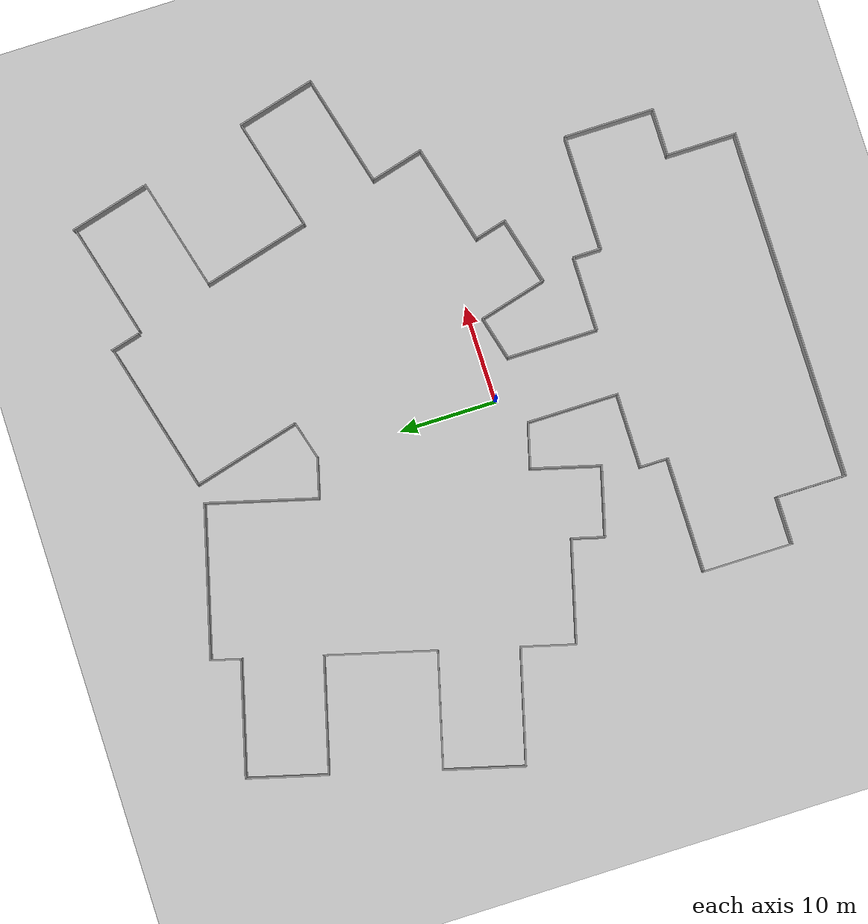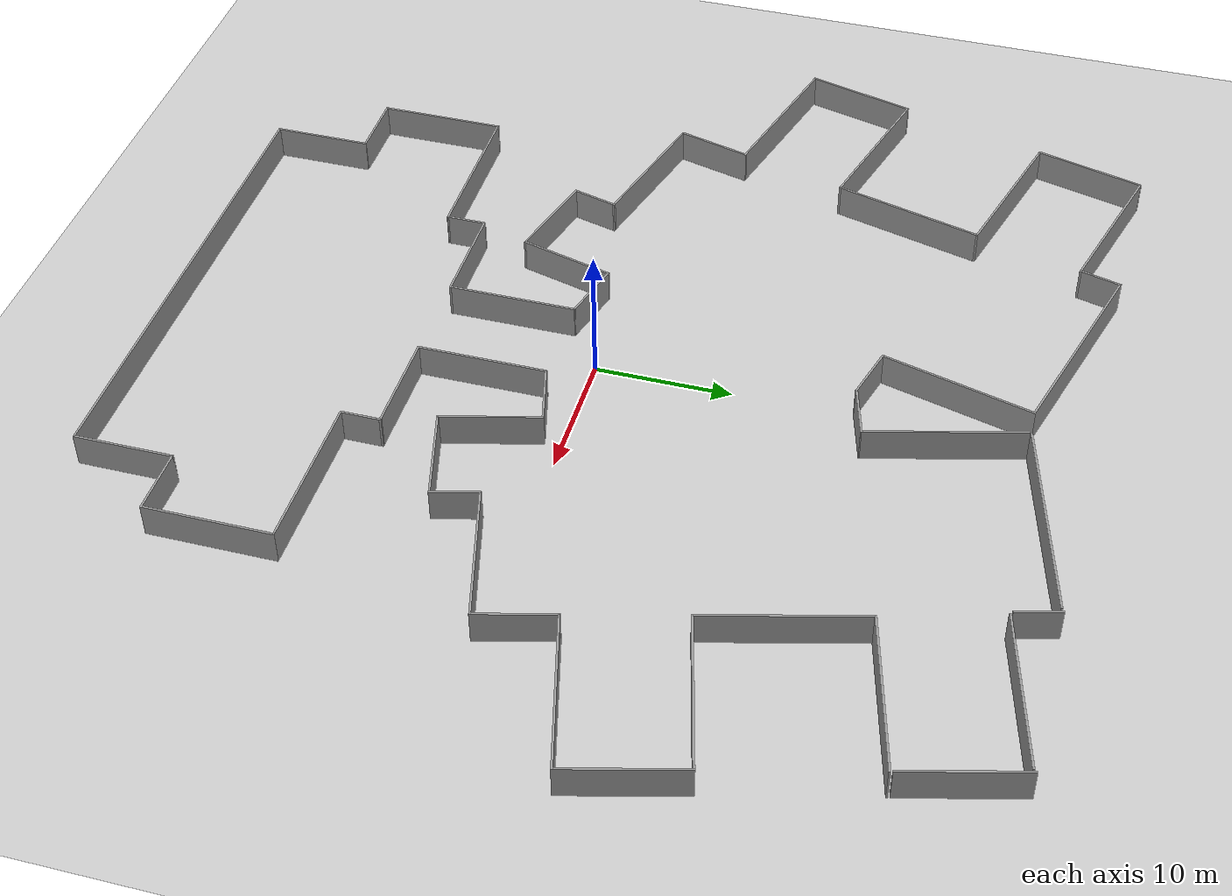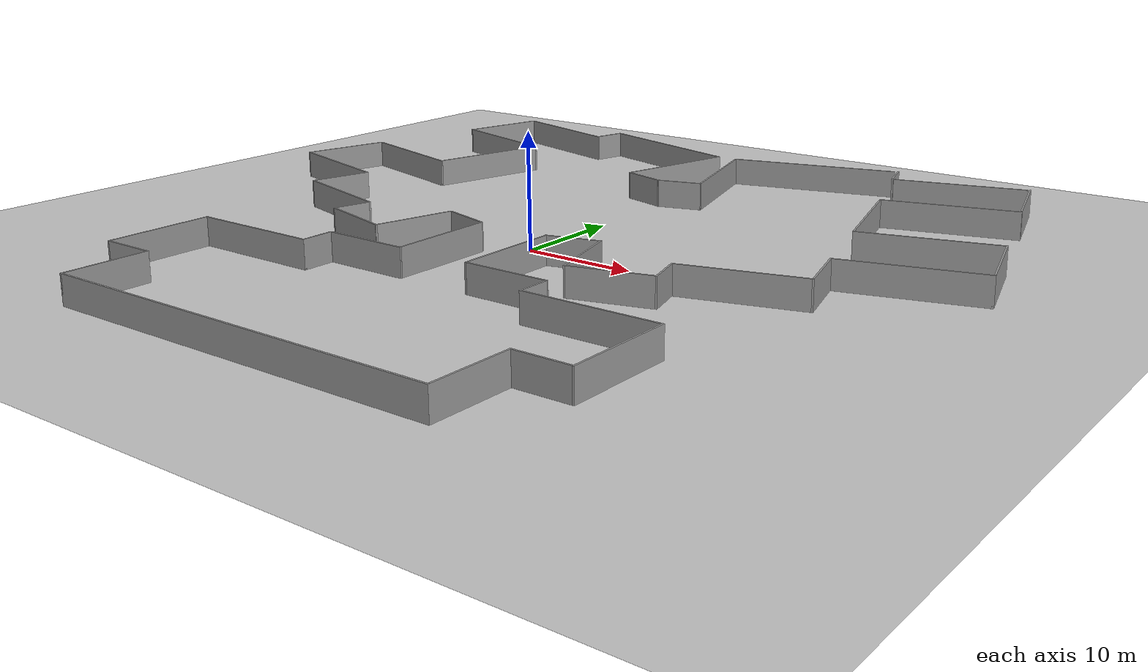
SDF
<sdf version="1.6">
 <world name="default">
  <light name="sun" type="directional">
   <pose>0 0 10 0 -0 0</pose>
   <diffuse>0.8 0.8 0.8 1</diffuse>
   <specular>0.1 0.1 0.1 1</specular>
   <attenuation>
    <range>1000</range>
    <constant>0.9</constant>
    <linear>0.01</linear>
    <quadratic>0.001</quadratic>
   </attenuation>
   <direction>-0.5 0.5 -1</direction>
  </light>
  <model name="ground_plane">
   <static>1</static>
   <link name="link">
    <collision name="collision">
     <geometry><plane><normal>0 0 1</normal><size>100 100</size></plane></geometry>
     <surface><friction><ode><mu>100</mu><mu2>50</mu2></ode></friction></surface>
    </collision>
    <visual name="visual">
     <cast_shadows>0</cast_shadows>
     <geometry><plane><normal>0 0 1</normal><size>100 100</size></plane></geometry>
     <material>
      <script><uri>file://media/materials/scripts/gazebo.material</uri><name>Gazebo/Grey</name></script>
     </material>
    </visual>
   </link>
  </model>
  <gravity>0 0 -9.8</gravity>
  <magnetic_field>6e-06 2.3e-05 -4.2e-05</magnetic_field>
  <atmosphere type="adiabatic"/>
  <physics name="default_physics" default="0" type="ode">
   <max_step_size>0.001</max_step_size>
   <real_time_factor>1</real_time_factor>
   <real_time_update_rate>1000</real_time_update_rate>
  </physics>
  <scene><ambient>0.4 0.4 0.4 1</ambient><background>0.7 0.7 0.7 1</background><shadows>1</shadows></scene>
  <spherical_coordinates>
   <surface_model>EARTH_WGS84</surface_model>
   <latitude_deg>0</latitude_deg>
   <longitude_deg>0</longitude_deg>
   <elevation>0</elevation>
   <heading_deg>0</heading_deg>
  </spherical_coordinates>
  <model name="right_map_down">
   <pose>0.308675 2.07821 0 0 -0 0</pose>
   <link name="Wall_0">
    <collision name="Wall_0_Collision">
     <geometry><box><size>36.2 0.15 2.5</size></box></geometry>
     <pose>0 0 1.25 0 -0 0</pose>
    </collision>
    <visual name="Wall_0_Visual">
     <pose>0 0 1.25 0 -0 0</pose>
     <geometry><box><size>36.2 0.15 2.5</size></box></geometry>
     <material>
      <script><uri>file://media/materials/scripts/gazebo.material</uri><name>Gazebo/Grey</name></script>
      <ambient>1 1 1 1</ambient>
     </material>
    </visual>
    <pose>0.020689 -33.1531 0 0 -0 0</pose>
   </link>
   <link name="Wall_100">
    <collision name="Wall_100_Collision">
     <geometry><box><size>3.2 0.15 2.5</size></box></geometry>
     <pose>0 0 1.25 0 -0 0</pose>
    </collision>
    <visual name="Wall_100_Visual">
     <pose>0 0 1.25 0 -0 0</pose>
     <geometry><box><size>3.2 0.15 2.5</size></box></geometry>
     <material>
      <script><uri>file://media/materials/scripts/gazebo.material</uri><name>Gazebo/Grey</name></script>
      <ambient>1 1 1 1</ambient>
     </material>
    </visual>
    <pose>-16.9283 31.3178 0 0 -0 1.309</pose>
   </link>
   <link name="Wall_102">
    <collision name="Wall_102_Collision">
     <geometry><box><size>3.2 0.15 2.5</size></box></geometry>
     <pose>0 0 1.25 0 -0 0</pose>
    </collision>
    <visual name="Wall_102_Visual">
     <pose>0 0 1.25 0 -0 0</pose>
     <geometry><box><size>3.2 0.15 2.5</size></box></geometry>
     <material>
      <script><uri>file://media/materials/scripts/gazebo.material</uri><name>Gazebo/Grey</name></script>
      <ambient>1 1 1 1</ambient>
     </material>
    </visual>
    <pose>16.3757 31.5284 0 0 -0 1.8326</pose>
   </link>
   <link name="Wall_104">
    <collision name="Wall_104_Collision">
     <geometry><box><size>15.8 0.15 2.5</size></box></geometry>
     <pose>0 0 1.25 0 -0 0</pose>
    </collision>
    <visual name="Wall_104_Visual">
     <pose>0 0 1.25 0 -0 0</pose>
     <geometry><box><size>15.8 0.15 2.5</size></box></geometry>
     <material>
      <script><uri>file://media/materials/scripts/gazebo.material</uri><name>Gazebo/Grey</name></script>
      <ambient>1 1 1 1</ambient>
     </material>
    </visual>
    <pose>-8.97526 30.7656 0 0 0 -0.261799</pose>
   </link>
   <link name="Wall_106">
    <collision name="Wall_106_Collision">
     <geometry><box><size>15.8 0.15 2.5</size></box></geometry>
     <pose>0 0 1.25 0 -0 0</pose>
    </collision>
    <visual name="Wall_106_Visual">
     <pose>0 0 1.25 0 -0 0</pose>
     <geometry><box><size>15.8 0.15 2.5</size></box></geometry>
     <material>
      <script><uri>file://media/materials/scripts/gazebo.material</uri><name>Gazebo/Grey</name></script>
      <ambient>1 1 1 1</ambient>
     </material>
    </visual>
    <pose>8.09291 30.8207 0 0 0 -2.87979</pose>
   </link>
   <link name="Wall_11">
    <collision name="Wall_11_Collision">
     <geometry><box><size>9.4 0.15 2.5</size></box></geometry>
     <pose>0 0 1.25 0 -0 0</pose>
    </collision>
    <visual name="Wall_11_Visual">
     <pose>0 0 1.25 0 -0 0</pose>
     <geometry><box><size>9.4 0.15 2.5</size></box></geometry>
     <material>
      <script><uri>file://media/materials/scripts/gazebo.material</uri><name>Gazebo/Grey</name></script>
      <ambient>1 1 1 1</ambient>
     </material>
    </visual>
    <pose>-22.8951 -21.3564 0 0 -0 1.5708</pose>
   </link>
   <link name="Wall_127">
    <collision name="Wall_127_Collision">
     <geometry><box><size>11.6 0.15 2.5</size></box></geometry>
     <pose>0 0 1.25 0 -0 0</pose>
    </collision>
    <visual name="Wall_127_Visual">
     <pose>0 0 1.25 0 -0 0</pose>
     <geometry><box><size>11.6 0.15 2.5</size></box></geometry>
     <material>
      <script><uri>file://media/materials/scripts/gazebo.material</uri><name>Gazebo/Grey</name></script>
      <ambient>1 1 1 1</ambient>
     </material>
    </visual>
    <pose>-2.89863 23.2104 0 0 0 -1.8326</pose>
   </link>
   <link name="Wall_13">
    <collision name="Wall_13_Collision">
     <geometry><box><size>9.4 0.15 2.5</size></box></geometry>
     <pose>0 0 1.25 0 -0 0</pose>
    </collision>
    <visual name="Wall_13_Visual">
     <pose>0 0 1.25 0 -0 0</pose>
     <geometry><box><size>9.4 0.15 2.5</size></box></geometry>
     <material>
      <script><uri>file://media/materials/scripts/gazebo.material</uri><name>Gazebo/Grey</name></script>
      <ambient>1 1 1 1</ambient>
     </material>
    </visual>
    <pose>22.8957 -21.3781 0 0 -0 1.5708</pose>
   </link>
   <link name="Wall_131">
    <collision name="Wall_131_Collision">
     <geometry><box><size>11.6 0.15 2.5</size></box></geometry>
     <pose>0 0 1.25 0 -0 0</pose>
    </collision>
    <visual name="Wall_131_Visual">
     <pose>0 0 1.25 0 -0 0</pose>
     <geometry><box><size>11.6 0.15 2.5</size></box></geometry>
     <material>
      <script><uri>file://media/materials/scripts/gazebo.material</uri><name>Gazebo/Grey</name></script>
      <ambient>1 1 1 1</ambient>
     </material>
    </visual>
    <pose>2.01628 23.2655 0 0 0 -1.309</pose>
   </link>
   <link name="Wall_134">
    <collision name="Wall_134_Collision">
     <geometry><box><size>4.25 0.15 2.5</size></box></geometry>
     <pose>0 0 1.25 0 -0 0</pose>
    </collision>
    <visual name="Wall_134_Visual">
     <pose>0 0 1.25 0 -0 0</pose>
     <geometry><box><size>4.25 0.15 2.5</size></box></geometry>
     <material>
      <script><uri>file://media/materials/scripts/gazebo.material</uri><name>Gazebo/Grey</name></script>
      <ambient>1 1 1 1</ambient>
     </material>
    </visual>
    <pose>-2.40022 17.1499 0 0 0 -0.261799</pose>
   </link>
   <link name="Wall_141">
    <collision name="Wall_141_Collision">
     <geometry><box><size>4.22401 0.15 2.5</size></box></geometry>
     <pose>0 0 1.25 0 -0 0</pose>
    </collision>
    <visual name="Wall_141_Visual">
     <pose>0 0 1.25 0 -0 0</pose>
     <geometry><box><size>4.22401 0.15 2.5</size></box></geometry>
     <material>
      <script><uri>file://media/materials/scripts/gazebo.material</uri><name>Gazebo/Grey</name></script>
      <ambient>1 1 1 1</ambient>
     </material>
    </visual>
    <pose>1.53897 17.1774 0 0 0 -2.86404</pose>
   </link>
   <link name="Wall_15">
    <collision name="Wall_15_Collision">
     <geometry><box><size>12 0.15 2.5</size></box></geometry>
     <pose>0 0 1.25 0 -0 0</pose>
    </collision>
    <visual name="Wall_15_Visual">
     <pose>0 0 1.25 0 -0 0</pose>
     <geometry><box><size>12 0.15 2.5</size></box></geometry>
     <material>
      <script><uri>file://media/materials/scripts/gazebo.material</uri><name>Gazebo/Grey</name></script>
      <ambient>1 1 1 1</ambient>
     </material>
    </visual>
    <pose>16.9706 -16.7531 0 0 0 -3.14159</pose>
   </link>
   <link name="Wall_17">
    <collision name="Wall_17_Collision">
     <geometry><box><size>3 0.15 2.5</size></box></geometry>
     <pose>0 0 1.25 0 -0 0</pose>
    </collision>
    <visual name="Wall_17_Visual">
     <pose>0 0 1.25 0 -0 0</pose>
     <geometry><box><size>3 0.15 2.5</size></box></geometry>
     <material>
      <script><uri>file://media/materials/scripts/gazebo.material</uri><name>Gazebo/Grey</name></script>
      <ambient>1 1 1 1</ambient>
     </material>
    </visual>
    <pose>11.0455 -15.3281 0 0 -0 1.5708</pose>
   </link>
   <link name="Wall_19">
    <collision name="Wall_19_Collision">
     <geometry><box><size>12 0.15 2.5</size></box></geometry>
     <pose>0 0 1.25 0 -0 0</pose>
    </collision>
    <visual name="Wall_19_Visual">
     <pose>0 0 1.25 0 -0 0</pose>
     <geometry><box><size>12 0.15 2.5</size></box></geometry>
     <material>
      <script><uri>file://media/materials/scripts/gazebo.material</uri><name>Gazebo/Grey</name></script>
      <ambient>1 1 1 1</ambient>
     </material>
    </visual>
    <pose>-16.9701 -16.7314 0 0 -0 0</pose>
   </link>
   <link name="Wall_2">
    <collision name="Wall_2_Collision">
     <geometry><box><size>7.3 0.15 2.5</size></box></geometry>
     <pose>0 0 1.25 0 -0 0</pose>
    </collision>
    <visual name="Wall_2_Visual">
     <pose>0 0 1.25 0 -0 0</pose>
     <geometry><box><size>7.3 0.15 2.5</size></box></geometry>
     <material>
      <script><uri>file://media/materials/scripts/gazebo.material</uri><name>Gazebo/Grey</name></script>
      <ambient>1 1 1 1</ambient>
     </material>
    </visual>
    <pose>18.0457 -29.5781 0 0 -0 1.5708</pose>
   </link>
   <link name="Wall_21">
    <collision name="Wall_21_Collision">
     <geometry><box><size>3 0.15 2.5</size></box></geometry>
     <pose>0 0 1.25 0 -0 0</pose>
    </collision>
    <visual name="Wall_21_Visual">
     <pose>0 0 1.25 0 -0 0</pose>
     <geometry><box><size>3 0.15 2.5</size></box></geometry>
     <material>
      <script><uri>file://media/materials/scripts/gazebo.material</uri><name>Gazebo/Grey</name></script>
      <ambient>1 1 1 1</ambient>
     </material>
    </visual>
    <pose>-11.0451 -15.3064 0 0 -0 1.5708</pose>
   </link>
   <link name="Wall_23">
    <collision name="Wall_23_Collision">
     <geometry><box><size>7.8 0.15 2.5</size></box></geometry>
     <pose>0 0 1.25 0 -0 0</pose>
    </collision>
    <visual name="Wall_23_Visual">
     <pose>0 0 1.25 0 -0 0</pose>
     <geometry><box><size>7.8 0.15 2.5</size></box></geometry>
     <material>
      <script><uri>file://media/materials/scripts/gazebo.material</uri><name>Gazebo/Grey</name></script>
      <ambient>1 1 1 1</ambient>
     </material>
    </visual>
    <pose>-7.22029 -13.8813 0 0 -0 3e-05</pose>
   </link>
   <link name="Wall_25">
    <collision name="Wall_25_Collision">
     <geometry><box><size>7.8 0.15 2.5</size></box></geometry>
     <pose>0 0 1.25 0 -0 0</pose>
    </collision>
    <visual name="Wall_25_Visual">
     <pose>0 0 1.25 0 -0 0</pose>
     <geometry><box><size>7.8 0.15 2.5</size></box></geometry>
     <material>
      <script><uri>file://media/materials/scripts/gazebo.material</uri><name>Gazebo/Grey</name></script>
      <ambient>1 1 1 1</ambient>
     </material>
    </visual>
    <pose>7.2205 -13.9031 0 0 -0 3.14159</pose>
   </link>
   <link name="Wall_33">
    <collision name="Wall_33_Collision">
     <geometry><box><size>9.5 0.15 2.5</size></box></geometry>
     <pose>0 0 1.25 0 -0 0</pose>
    </collision>
    <visual name="Wall_33_Visual">
     <pose>0 0 1.25 0 -0 0</pose>
     <geometry><box><size>9.5 0.15 2.5</size></box></geometry>
     <material>
      <script><uri>file://media/materials/scripts/gazebo.material</uri><name>Gazebo/Grey</name></script>
      <ambient>1 1 1 1</ambient>
     </material>
    </visual>
    <pose>3.3955 -9.22814 0 0 -0 1.5708</pose>
   </link>
   <link name="Wall_35">
    <collision name="Wall_35_Collision">
     <geometry><box><size>4.8 0.15 2.5</size></box></geometry>
     <pose>0 0 1.25 0 -0 0</pose>
    </collision>
    <visual name="Wall_35_Visual">
     <pose>0 0 1.25 0 -0 0</pose>
     <geometry><box><size>4.8 0.15 2.5</size></box></geometry>
     <material>
      <script><uri>file://media/materials/scripts/gazebo.material</uri><name>Gazebo/Grey</name></script>
      <ambient>1 1 1 1</ambient>
     </material>
    </visual>
    <pose>5.6413 -3.95148 0 0 -0 0.261757</pose>
   </link>
   <link name="Wall_39">
    <collision name="Wall_39_Collision">
     <geometry><box><size>9.5 0.15 2.5</size></box></geometry>
     <pose>0 0 1.25 0 -0 0</pose>
    </collision>
    <visual name="Wall_39_Visual">
     <pose>0 0 1.25 0 -0 0</pose>
     <geometry><box><size>9.5 0.15 2.5</size></box></geometry>
     <material>
      <script><uri>file://media/materials/scripts/gazebo.material</uri><name>Gazebo/Grey</name></script>
      <ambient>1 1 1 1</ambient>
     </material>
    </visual>
    <pose>-3.3955 -9.20614 0 0 -0 1.5708</pose>
   </link>
   <link name="Wall_4">
    <collision name="Wall_4_Collision">
     <geometry><box><size>5 0.15 2.5</size></box></geometry>
     <pose>0 0 1.25 0 -0 0</pose>
    </collision>
    <visual name="Wall_4_Visual">
     <pose>0 0 1.25 0 -0 0</pose>
     <geometry><box><size>5 0.15 2.5</size></box></geometry>
     <material>
      <script><uri>file://media/materials/scripts/gazebo.material</uri><name>Gazebo/Grey</name></script>
      <ambient>1 1 1 1</ambient>
     </material>
    </visual>
    <pose>20.4707 -26.0031 0 0 -0 0</pose>
   </link>
   <link name="Wall_41">
    <collision name="Wall_41_Collision">
     <geometry><box><size>4.8 0.15 2.5</size></box></geometry>
     <pose>0 0 1.25 0 -0 0</pose>
    </collision>
    <visual name="Wall_41_Visual">
     <pose>0 0 1.25 0 -0 0</pose>
     <geometry><box><size>4.8 0.15 2.5</size></box></geometry>
     <material>
      <script><uri>file://media/materials/scripts/gazebo.material</uri><name>Gazebo/Grey</name></script>
      <ambient>1 1 1 1</ambient>
     </material>
    </visual>
    <pose>-5.6413 -3.92949 0 0 -0 2.87984</pose>
   </link>
   <link name="Wall_43">
    <collision name="Wall_43_Collision">
     <geometry><box><size>7.3 0.15 2.5</size></box></geometry>
     <pose>0 0 1.25 0 -0 0</pose>
    </collision>
    <visual name="Wall_43_Visual">
     <pose>0 0 1.25 0 -0 0</pose>
     <geometry><box><size>7.3 0.15 2.5</size></box></geometry>
     <material>
      <script><uri>file://media/materials/scripts/gazebo.material</uri><name>Gazebo/Grey</name></script>
      <ambient>1 1 1 1</ambient>
     </material>
    </visual>
    <pose>8.81238 -6.80301 0 0 0 -1.309</pose>
   </link>
   <link name="Wall_46">
    <collision name="Wall_46_Collision">
     <geometry><box><size>7.3 0.15 2.5</size></box></geometry>
     <pose>0 0 1.25 0 -0 0</pose>
    </collision>
    <visual name="Wall_46_Visual">
     <pose>0 0 1.25 0 -0 0</pose>
     <geometry><box><size>7.3 0.15 2.5</size></box></geometry>
     <material>
      <script><uri>file://media/materials/scripts/gazebo.material</uri><name>Gazebo/Grey</name></script>
      <ambient>1 1 1 1</ambient>
     </material>
    </visual>
    <pose>-8.81239 -6.78101 0 0 0 -1.8326</pose>
   </link>
   <link name="Wall_48">
    <collision name="Wall_48_Collision">
     <geometry><box><size>7.3 0.15 2.5</size></box></geometry>
     <pose>0 0 1.25 0 -0 0</pose>
    </collision>
    <visual name="Wall_48_Visual">
     <pose>0 0 1.25 0 -0 0</pose>
     <geometry><box><size>7.3 0.15 2.5</size></box></geometry>
     <material>
      <script><uri>file://media/materials/scripts/gazebo.material</uri><name>Gazebo/Grey</name></script>
      <ambient>1 1 1 1</ambient>
     </material>
    </visual>
    <pose>-13.1908 -9.30892 0 0 -0 2.87979</pose>
   </link>
   <link name="Wall_50">
    <collision name="Wall_50_Collision">
     <geometry><box><size>7.3 0.15 2.5</size></box></geometry>
     <pose>0 0 1.25 0 -0 0</pose>
    </collision>
    <visual name="Wall_50_Visual">
     <pose>0 0 1.25 0 -0 0</pose>
     <geometry><box><size>7.3 0.15 2.5</size></box></geometry>
     <material>
      <script><uri>file://media/materials/scripts/gazebo.material</uri><name>Gazebo/Grey</name></script>
      <ambient>1 1 1 1</ambient>
     </material>
    </visual>
    <pose>13.1908 -9.33092 0 0 -0 0.261799</pose>
   </link>
   <link name="Wall_52">
    <collision name="Wall_52_Collision">
     <geometry><box><size>3.5 0.15 2.5</size></box></geometry>
     <pose>0 0 1.25 0 -0 0</pose>
    </collision>
    <visual name="Wall_52_Visual">
     <pose>0 0 1.25 0 -0 0</pose>
     <geometry><box><size>3.5 0.15 2.5</size></box></geometry>
     <material>
      <script><uri>file://media/materials/scripts/gazebo.material</uri><name>Gazebo/Grey</name></script>
      <ambient>1 1 1 1</ambient>
     </material>
    </visual>
    <pose>-16.2105 -6.76571 0 0 -0 1.309</pose>
   </link>
   <link name="Wall_54">
    <collision name="Wall_54_Collision">
     <geometry><box><size>3.5 0.15 2.5</size></box></geometry>
     <pose>0 0 1.25 0 -0 0</pose>
    </collision>
    <visual name="Wall_54_Visual">
     <pose>0 0 1.25 0 -0 0</pose>
     <geometry><box><size>3.5 0.15 2.5</size></box></geometry>
     <material>
      <script><uri>file://media/materials/scripts/gazebo.material</uri><name>Gazebo/Grey</name></script>
      <ambient>1 1 1 1</ambient>
     </material>
    </visual>
    <pose>16.2105 -6.78771 0 0 -0 1.8326</pose>
   </link>
   <link name="Wall_56">
    <collision name="Wall_56_Collision">
     <geometry><box><size>10.7 0.15 2.5</size></box></geometry>
     <pose>0 0 1.25 0 -0 0</pose>
    </collision>
    <visual name="Wall_56_Visual">
     <pose>0 0 1.25 0 -0 0</pose>
     <geometry><box><size>10.7 0.15 2.5</size></box></geometry>
     <material>
      <script><uri>file://media/materials/scripts/gazebo.material</uri><name>Gazebo/Grey</name></script>
      <ambient>1 1 1 1</ambient>
     </material>
    </visual>
    <pose>-20.8722 -3.78252 0 0 -0 2.87979</pose>
   </link>
   <link name="Wall_58">
    <collision name="Wall_58_Collision">
     <geometry><box><size>10.7 0.15 2.5</size></box></geometry>
     <pose>0 0 1.25 0 -0 0</pose>
    </collision>
    <visual name="Wall_58_Visual">
     <pose>0 0 1.25 0 -0 0</pose>
     <geometry><box><size>10.7 0.15 2.5</size></box></geometry>
     <material>
      <script><uri>file://media/materials/scripts/gazebo.material</uri><name>Gazebo/Grey</name></script>
      <ambient>1 1 1 1</ambient>
     </material>
    </visual>
    <pose>20.8722 -3.80452 0 0 -0 0.261799</pose>
   </link>
   <link name="Wall_6">
    <collision name="Wall_6_Collision">
     <geometry><box><size>7.3 0.15 2.5</size></box></geometry>
     <pose>0 0 1.25 0 -0 0</pose>
    </collision>
    <visual name="Wall_6_Visual">
     <pose>0 0 1.25 0 -0 0</pose>
     <geometry><box><size>7.3 0.15 2.5</size></box></geometry>
     <material>
      <script><uri>file://media/materials/scripts/gazebo.material</uri><name>Gazebo/Grey</name></script>
      <ambient>1 1 1 1</ambient>
     </material>
    </visual>
    <pose>-18.0043 -29.5781 0 0 -0 1.5708</pose>
   </link>
   <link name="Wall_60">
    <collision name="Wall_60_Collision">
     <geometry><box><size>5.7 0.15 2.5</size></box></geometry>
     <pose>0 0 1.25 0 -0 0</pose>
    </collision>
    <visual name="Wall_60_Visual">
     <pose>0 0 1.25 0 -0 0</pose>
     <geometry><box><size>5.7 0.15 2.5</size></box></geometry>
     <material>
      <script><uri>file://media/materials/scripts/gazebo.material</uri><name>Gazebo/Grey</name></script>
      <ambient>1 1 1 1</ambient>
     </material>
    </visual>
    <pose>-25.2493 0.263197 0 0 -0 1.309</pose>
   </link>
   <link name="Wall_64">
    <collision name="Wall_64_Collision">
     <geometry><box><size>5.7 0.15 2.5</size></box></geometry>
     <pose>0 0 1.25 0 -0 0</pose>
    </collision>
    <visual name="Wall_64_Visual">
     <pose>0 0 1.25 0 -0 0</pose>
     <geometry><box><size>5.7 0.15 2.5</size></box></geometry>
     <material>
      <script><uri>file://media/materials/scripts/gazebo.material</uri><name>Gazebo/Grey</name></script>
      <ambient>1 1 1 1</ambient>
     </material>
    </visual>
    <pose>25.2493 0.241197 0 0 -0 1.8326</pose>
   </link>
   <link name="Wall_67">
    <collision name="Wall_67_Collision">
     <geometry><box><size>12 0.15 2.5</size></box></geometry>
     <pose>0 0 1.25 0 -0 0</pose>
    </collision>
    <visual name="Wall_67_Visual">
     <pose>0 0 1.25 0 -0 0</pose>
     <geometry><box><size>12 0.15 2.5</size></box></geometry>
     <material>
      <script><uri>file://media/materials/scripts/gazebo.material</uri><name>Gazebo/Grey</name></script>
      <ambient>1 1 1 1</ambient>
     </material>
    </visual>
    <pose>30.2542 4.45514 0 0 -0 0.261799</pose>
   </link>
   <link name="Wall_69">
    <collision name="Wall_69_Collision">
     <geometry><box><size>12 0.15 2.5</size></box></geometry>
     <pose>0 0 1.25 0 -0 0</pose>
    </collision>
    <visual name="Wall_69_Visual">
     <pose>0 0 1.25 0 -0 0</pose>
     <geometry><box><size>12 0.15 2.5</size></box></geometry>
     <material>
      <script><uri>file://media/materials/scripts/gazebo.material</uri><name>Gazebo/Grey</name></script>
      <ambient>1 1 1 1</ambient>
     </material>
    </visual>
    <pose>-30.2542 4.47714 0 0 -0 2.87979</pose>
   </link>
   <link name="Wall_71">
    <collision name="Wall_71_Collision">
     <geometry><box><size>8.4 0.15 2.5</size></box></geometry>
     <pose>0 0 1.25 0 -0 0</pose>
    </collision>
    <visual name="Wall_71_Visual">
     <pose>0 0 1.25 0 -0 0</pose>
     <geometry><box><size>8.4 0.15 2.5</size></box></geometry>
     <material>
      <script><uri>file://media/materials/scripts/gazebo.material</uri><name>Gazebo/Grey</name></script>
      <ambient>1 1 1 1</ambient>
     </material>
    </visual>
    <pose>-34.9097 9.99509 0 0 -0 1.309</pose>
   </link>
   <link name="Wall_73">
    <collision name="Wall_73_Collision">
     <geometry><box><size>8.4 0.15 2.5</size></box></geometry>
     <pose>0 0 1.25 0 -0 0</pose>
    </collision>
    <visual name="Wall_73_Visual">
     <pose>0 0 1.25 0 -0 0</pose>
     <geometry><box><size>8.4 0.15 2.5</size></box></geometry>
     <material>
      <script><uri>file://media/materials/scripts/gazebo.material</uri><name>Gazebo/Grey</name></script>
      <ambient>1 1 1 1</ambient>
     </material>
    </visual>
    <pose>34.9097 9.97309 0 0 -0 1.8326</pose>
   </link>
   <link name="Wall_75">
    <collision name="Wall_75_Collision">
     <geometry><box><size>12 0.15 2.5</size></box></geometry>
     <pose>0 0 1.25 0 -0 0</pose>
    </collision>
    <visual name="Wall_75_Visual">
     <pose>0 0 1.25 0 -0 0</pose>
     <geometry><box><size>12 0.15 2.5</size></box></geometry>
     <material>
      <script><uri>file://media/materials/scripts/gazebo.material</uri><name>Gazebo/Grey</name></script>
      <ambient>1 1 1 1</ambient>
     </material>
    </visual>
    <pose>-28.1189 12.446 0 0 0 -0.261799</pose>
   </link>
   <link name="Wall_77">
    <collision name="Wall_77_Collision">
     <geometry><box><size>12 0.15 2.5</size></box></geometry>
     <pose>0 0 1.25 0 -0 0</pose>
    </collision>
    <visual name="Wall_77_Visual">
     <pose>0 0 1.25 0 -0 0</pose>
     <geometry><box><size>12 0.15 2.5</size></box></geometry>
     <material>
      <script><uri>file://media/materials/scripts/gazebo.material</uri><name>Gazebo/Grey</name></script>
      <ambient>1 1 1 1</ambient>
     </material>
    </visual>
    <pose>28.1189 12.424 0 0 0 -2.87979</pose>
   </link>
   <link name="Wall_79">
    <collision name="Wall_79_Collision">
     <geometry><box><size>11.5 0.15 2.5</size></box></geometry>
     <pose>0 0 1.25 0 -0 0</pose>
    </collision>
    <visual name="Wall_79_Visual">
     <pose>0 0 1.25 0 -0 0</pose>
     <geometry><box><size>11.5 0.15 2.5</size></box></geometry>
     <material>
      <script><uri>file://media/materials/scripts/gazebo.material</uri><name>Gazebo/Grey</name></script>
      <ambient>1 1 1 1</ambient>
     </material>
    </visual>
    <pose>-20.9272 16.3942 0 0 -0 1.30902</pose>
   </link>
   <link name="Wall_8">
    <collision name="Wall_8_Collision">
     <geometry><box><size>5 0.15 2.5</size></box></geometry>
     <pose>0 0 1.25 0 -0 0</pose>
    </collision>
    <visual name="Wall_8_Visual">
     <pose>0 0 1.25 0 -0 0</pose>
     <geometry><box><size>5 0.15 2.5</size></box></geometry>
     <material>
      <script><uri>file://media/materials/scripts/gazebo.material</uri><name>Gazebo/Grey</name></script>
      <ambient>1 1 1 1</ambient>
     </material>
    </visual>
    <pose>-20.4701 -25.9814 0 0 -0 3.14159</pose>
   </link>
   <link name="Wall_81">
    <collision name="Wall_81_Collision">
     <geometry><box><size>11.5 0.15 2.5</size></box></geometry>
     <pose>0 0 1.25 0 -0 0</pose>
    </collision>
    <visual name="Wall_81_Visual">
     <pose>0 0 1.25 0 -0 0</pose>
     <geometry><box><size>11.5 0.15 2.5</size></box></geometry>
     <material>
      <script><uri>file://media/materials/scripts/gazebo.material</uri><name>Gazebo/Grey</name></script>
      <ambient>1 1 1 1</ambient>
     </material>
    </visual>
    <pose>20.927 16.3722 0 0 -0 1.8326</pose>
   </link>
   <link name="Wall_84">
    <collision name="Wall_84_Collision">
     <geometry><box><size>12 0.15 2.5</size></box></geometry>
     <pose>0 0 1.25 0 -0 0</pose>
    </collision>
    <visual name="Wall_84_Visual">
     <pose>0 0 1.25 0 -0 0</pose>
     <geometry><box><size>12 0.15 2.5</size></box></geometry>
     <material>
      <script><uri>file://media/materials/scripts/gazebo.material</uri><name>Gazebo/Grey</name></script>
      <ambient>1 1 1 1</ambient>
     </material>
    </visual>
    <pose>-25.1815 23.4094 0 0 -0 2.87979</pose>
   </link>
   <link name="Wall_86">
    <collision name="Wall_86_Collision">
     <geometry><box><size>12 0.15 2.5</size></box></geometry>
     <pose>0 0 1.25 0 -0 0</pose>
    </collision>
    <visual name="Wall_86_Visual">
     <pose>0 0 1.25 0 -0 0</pose>
     <geometry><box><size>12 0.15 2.5</size></box></geometry>
     <material>
      <script><uri>file://media/materials/scripts/gazebo.material</uri><name>Gazebo/Grey</name></script>
      <ambient>1 1 1 1</ambient>
     </material>
    </visual>
    <pose>25.1813 23.3873 0 0 -0 0.261799</pose>
   </link>
   <link name="Wall_89">
    <collision name="Wall_89_Collision">
     <geometry><box><size>8.4 0.15 2.5</size></box></geometry>
     <pose>0 0 1.25 0 -0 0</pose>
    </collision>
    <visual name="Wall_89_Visual">
     <pose>0 0 1.25 0 -0 0</pose>
     <geometry><box><size>8.4 0.15 2.5</size></box></geometry>
     <material>
      <script><uri>file://media/materials/scripts/gazebo.material</uri><name>Gazebo/Grey</name></script>
      <ambient>1 1 1 1</ambient>
     </material>
    </visual>
    <pose>-29.8369 28.9273 0 0 -0 1.309</pose>
   </link>
   <link name="Wall_91">
    <collision name="Wall_91_Collision">
     <geometry><box><size>8.4 0.15 2.5</size></box></geometry>
     <pose>0 0 1.25 0 -0 0</pose>
    </collision>
    <visual name="Wall_91_Visual">
     <pose>0 0 1.25 0 -0 0</pose>
     <geometry><box><size>8.4 0.15 2.5</size></box></geometry>
     <material>
      <script><uri>file://media/materials/scripts/gazebo.material</uri><name>Gazebo/Grey</name></script>
      <ambient>1 1 1 1</ambient>
     </material>
    </visual>
    <pose>29.7815 29.1518 0 0 -0 1.8326</pose>
   </link>
   <link name="Wall_95">
    <collision name="Wall_95_Collision">
     <geometry><box><size>12 0.15 2.5</size></box></geometry>
     <pose>0 0 1.25 0 -0 0</pose>
    </collision>
    <visual name="Wall_95_Visual">
     <pose>0 0 1.25 0 -0 0</pose>
     <geometry><box><size>12 0.15 2.5</size></box></geometry>
     <material>
      <script><uri>file://media/materials/scripts/gazebo.material</uri><name>Gazebo/Grey</name></script>
      <ambient>1 1 1 1</ambient>
     </material>
    </visual>
    <pose>-23.0461 31.3782 0 0 0 -0.261799</pose>
   </link>
   <link name="Wall_97">
    <collision name="Wall_97_Collision">
     <geometry><box><size>12 0.15 2.5</size></box></geometry>
     <pose>0 0 1.25 0 -0 0</pose>
    </collision>
    <visual name="Wall_97_Visual">
     <pose>0 0 1.25 0 -0 0</pose>
     <geometry><box><size>12 0.15 2.5</size></box></geometry>
     <material>
      <script><uri>file://media/materials/scripts/gazebo.material</uri><name>Gazebo/Grey</name></script>
      <ambient>1 1 1 1</ambient>
     </material>
    </visual>
    <pose>22.7671 31.3943 0 0 0 -2.87979</pose>
   </link>
   <static>1</static>
  </model>
 </world>
</sdf>
